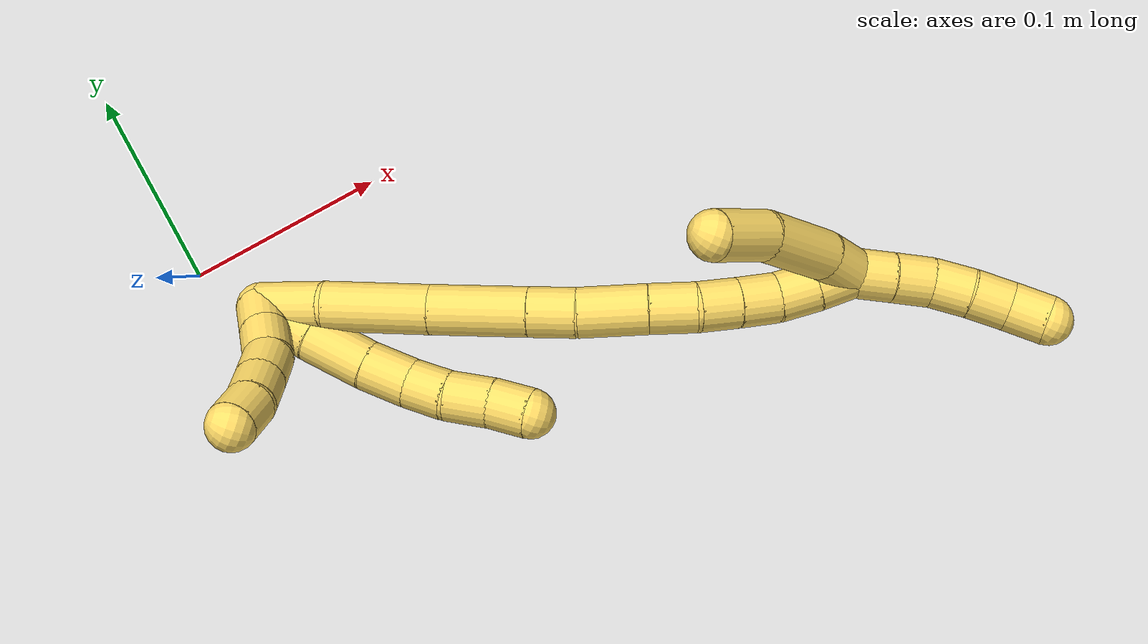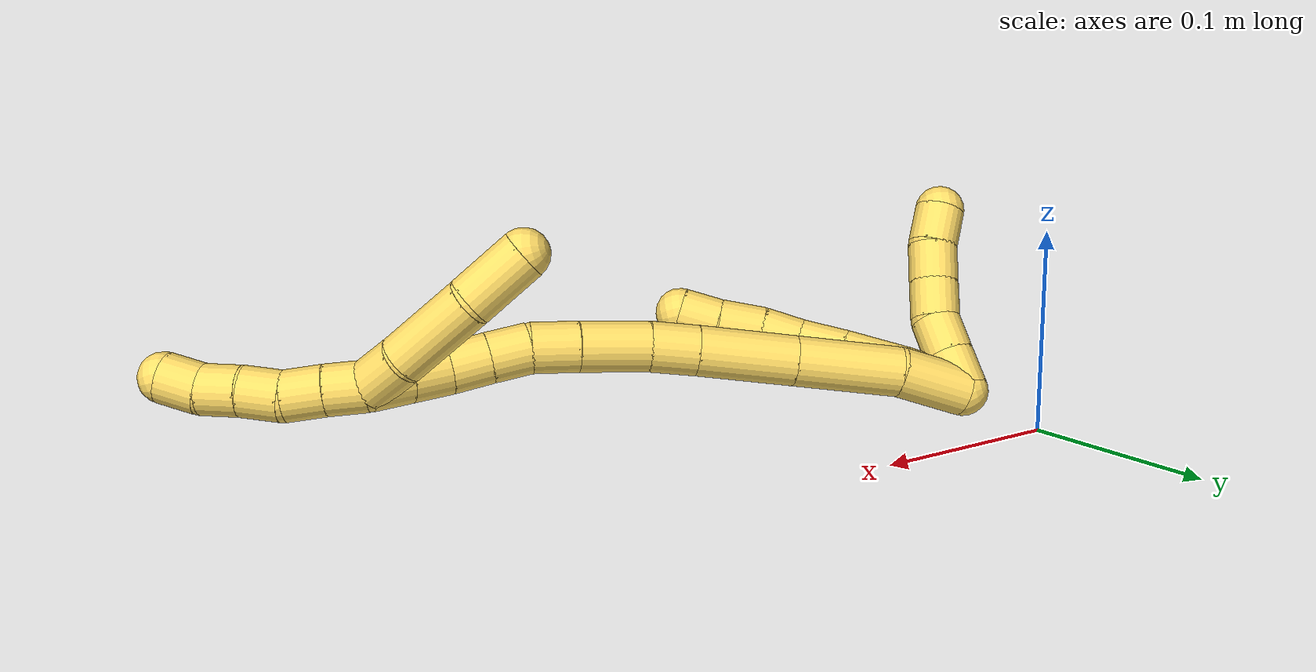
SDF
<sdf version="1.7">
 <world name="default">
  <model name="5">
   <static>0</static>
   <link name="5">
    <collision name="collision-cylinder-e_1_2_8">
     <pose>-0.007838 0.003042 0.01331 -0.22471 -0.521159 0.060152</pose>
     <geometry><cylinder><radius>0.0125</radius><length>0.031486</length></cylinder></geometry>
     <surface>
      <friction><ode><mu>1.16</mu><mu2>1.16</mu2><slip1>0</slip1><slip2>0</slip2></ode></friction>
      <contact><ode><kp>1e+06</kp><kd>1</kd><max_vel>0</max_vel><min_depth>0.001</min_depth></ode></contact>
     </surface>
    </collision>
    <visual name="visual-cylinder-e_1_2_8">
     <pose>-0.007838 0.003042 0.01331 -0.22471 -0.521159 0.060152</pose>
     <geometry><cylinder><radius>0.0125</radius><length>0.031486</length></cylinder></geometry>
     <material><ambient>1 0.858824 0.4 1</ambient></material>
    </visual>
    <collision name="collision-cylinder-e_2_8_9">
     <pose>-0.02277 0.009456 0.040517 -0.237965 -0.460438 0.056023</pose>
     <geometry><cylinder><radius>0.0125</radius><length>0.031927</length></cylinder></geometry>
     <surface>
      <friction><ode><mu>1.16</mu><mu2>1.16</mu2><slip1>0</slip1><slip2>0</slip2></ode></friction>
      <contact><ode><kp>1e+06</kp><kd>1</kd><max_vel>0</max_vel><min_depth>0.001</min_depth></ode></contact>
     </surface>
    </collision>
    <visual name="visual-cylinder-e_2_8_9">
     <pose>-0.02277 0.009456 0.040517 -0.237965 -0.460438 0.056023</pose>
     <geometry><cylinder><radius>0.0125</radius><length>0.031927</length></cylinder></geometry>
     <material><ambient>1 0.858824 0.4 1</ambient></material>
    </visual>
    <collision name="collision-cylinder-e_3_9_10">
     <pose>-0.034497 0.016032 0.064943 -0.295601 -0.398542 0.060117</pose>
     <geometry><cylinder><radius>0.0125</radius><length>0.02388</length></cylinder></geometry>
     <surface>
      <friction><ode><mu>1.16</mu><mu2>1.16</mu2><slip1>0</slip1><slip2>0</slip2></ode></friction>
      <contact><ode><kp>1e+06</kp><kd>1</kd><max_vel>0</max_vel><min_depth>0.001</min_depth></ode></contact>
     </surface>
    </collision>
    <visual name="visual-cylinder-e_3_9_10">
     <pose>-0.034497 0.016032 0.064943 -0.295601 -0.398542 0.060117</pose>
     <geometry><cylinder><radius>0.0125</radius><length>0.02388</length></cylinder></geometry>
     <material><ambient>1 0.858824 0.4 1</ambient></material>
    </visual>
    <collision name="collision-cylinder-e_4_10_11">
     <pose>-0.043186 0.023039 0.083791 -0.42847 -0.417306 0.092071</pose>
     <geometry><cylinder><radius>0.0125</radius><length>0.020014</length></cylinder></geometry>
     <surface>
      <friction><ode><mu>1.16</mu><mu2>1.16</mu2><slip1>0</slip1><slip2>0</slip2></ode></friction>
      <contact><ode><kp>1e+06</kp><kd>1</kd><max_vel>0</max_vel><min_depth>0.001</min_depth></ode></contact>
     </surface>
    </collision>
    <visual name="visual-cylinder-e_4_10_11">
     <pose>-0.043186 0.023039 0.083791 -0.42847 -0.417306 0.092071</pose>
     <geometry><cylinder><radius>0.0125</radius><length>0.020014</length></cylinder></geometry>
     <material><ambient>1 0.858824 0.4 1</ambient></material>
    </visual>
    <collision name="collision-cylinder-e_5_11_12">
     <pose>-0.049996 0.031761 0.101951 -0.463726 -0.245298 0.058193</pose>
     <geometry><cylinder><radius>0.0125</radius><length>0.022681</length></cylinder></geometry>
     <surface>
      <friction><ode><mu>1.16</mu><mu2>1.16</mu2><slip1>0</slip1><slip2>0</slip2></ode></friction>
      <contact><ode><kp>1e+06</kp><kd>1</kd><max_vel>0</max_vel><min_depth>0.001</min_depth></ode></contact>
     </surface>
    </collision>
    <visual name="visual-cylinder-e_5_11_12">
     <pose>-0.049996 0.031761 0.101951 -0.463726 -0.245298 0.058193</pose>
     <geometry><cylinder><radius>0.0125</radius><length>0.022681</length></cylinder></geometry>
     <material><ambient>1 0.858824 0.4 1</ambient></material>
    </visual>
    <collision name="collision-cylinder-e_6_12_6">
     <pose>-0.056369 0.040806 0.120158 -0.458044 -0.370066 0.08721</pose>
     <geometry><cylinder><radius>0.0125</radius><length>0.020012</length></cylinder></geometry>
     <surface>
      <friction><ode><mu>1.16</mu><mu2>1.16</mu2><slip1>0</slip1><slip2>0</slip2></ode></friction>
      <contact><ode><kp>1e+06</kp><kd>1</kd><max_vel>0</max_vel><min_depth>0.001</min_depth></ode></contact>
     </surface>
    </collision>
    <visual name="visual-cylinder-e_6_12_6">
     <pose>-0.056369 0.040806 0.120158 -0.458044 -0.370066 0.08721</pose>
     <geometry><cylinder><radius>0.0125</radius><length>0.020012</length></cylinder></geometry>
     <material><ambient>1 0.858824 0.4 1</ambient></material>
    </visual>
    <collision name="collision-cylinder-e_1_2_13">
     <pose>-0.009761 0.001484 0.001589 -0.751222 -1.35168 0.612464</pose>
     <geometry><cylinder><radius>0.0125</radius><length>0.02</length></cylinder></geometry>
     <surface>
      <friction><ode><mu>1.16</mu><mu2>1.16</mu2><slip1>0</slip1><slip2>0</slip2></ode></friction>
      <contact><ode><kp>1e+06</kp><kd>1</kd><max_vel>0</max_vel><min_depth>0.001</min_depth></ode></contact>
     </surface>
    </collision>
    <visual name="visual-cylinder-e_1_2_13">
     <pose>-0.009761 0.001484 0.001589 -0.751222 -1.35168 0.612464</pose>
     <geometry><cylinder><radius>0.0125</radius><length>0.02</length></cylinder></geometry>
     <material><ambient>1 0.858824 0.4 1</ambient></material>
    </visual>
    <collision name="collision-cylinder-e_2_13_14">
     <pose>-0.029288 0.00453 0.004653 -0.814249 -1.35415 0.667334</pose>
     <geometry><cylinder><radius>0.0125</radius><length>0.02</length></cylinder></geometry>
     <surface>
      <friction><ode><mu>1.16</mu><mu2>1.16</mu2><slip1>0</slip1><slip2>0</slip2></ode></friction>
      <contact><ode><kp>1e+06</kp><kd>1</kd><max_vel>0</max_vel><min_depth>0.001</min_depth></ode></contact>
     </surface>
    </collision>
    <visual name="visual-cylinder-e_2_13_14">
     <pose>-0.029288 0.00453 0.004653 -0.814249 -1.35415 0.667334</pose>
     <geometry><cylinder><radius>0.0125</radius><length>0.02</length></cylinder></geometry>
     <material><ambient>1 0.858824 0.4 1</ambient></material>
    </visual>
    <collision name="collision-cylinder-e_3_14_15">
     <pose>-0.048837 0.007437 0.004548 -2.4368 -1.36185 2.28941</pose>
     <geometry><cylinder><radius>0.0125</radius><length>0.02</length></cylinder></geometry>
     <surface>
      <friction><ode><mu>1.16</mu><mu2>1.16</mu2><slip1>0</slip1><slip2>0</slip2></ode></friction>
      <contact><ode><kp>1e+06</kp><kd>1</kd><max_vel>0</max_vel><min_depth>0.001</min_depth></ode></contact>
     </surface>
    </collision>
    <visual name="visual-cylinder-e_3_14_15">
     <pose>-0.048837 0.007437 0.004548 -2.4368 -1.36185 2.28941</pose>
     <geometry><cylinder><radius>0.0125</radius><length>0.02</length></cylinder></geometry>
     <material><ambient>1 0.858824 0.4 1</ambient></material>
    </visual>
    <collision name="collision-cylinder-e_4_15_16">
     <pose>-0.068311 0.010514 0.001218 -2.36107 -1.32199 2.16852</pose>
     <geometry><cylinder><radius>0.0125</radius><length>0.02</length></cylinder></geometry>
     <surface>
      <friction><ode><mu>1.16</mu><mu2>1.16</mu2><slip1>0</slip1><slip2>0</slip2></ode></friction>
      <contact><ode><kp>1e+06</kp><kd>1</kd><max_vel>0</max_vel><min_depth>0.001</min_depth></ode></contact>
     </surface>
    </collision>
    <visual name="visual-cylinder-e_4_15_16">
     <pose>-0.068311 0.010514 0.001218 -2.36107 -1.32199 2.16852</pose>
     <geometry><cylinder><radius>0.0125</radius><length>0.02</length></cylinder></geometry>
     <material><ambient>1 0.858824 0.4 1</ambient></material>
    </visual>
    <collision name="collision-cylinder-e_5_16_5">
     <pose>-0.087259 0.013002 -0.004241 -2.94077 -1.18252 2.84369</pose>
     <geometry><cylinder><radius>0.0125</radius><length>0.02</length></cylinder></geometry>
     <surface>
      <friction><ode><mu>1.16</mu><mu2>1.16</mu2><slip1>0</slip1><slip2>0</slip2></ode></friction>
      <contact><ode><kp>1e+06</kp><kd>1</kd><max_vel>0</max_vel><min_depth>0.001</min_depth></ode></contact>
     </surface>
    </collision>
    <visual name="visual-cylinder-e_5_16_5">
     <pose>-0.087259 0.013002 -0.004241 -2.94077 -1.18252 2.84369</pose>
     <geometry><cylinder><radius>0.0125</radius><length>0.02</length></cylinder></geometry>
     <material><ambient>1 0.858824 0.4 1</ambient></material>
    </visual>
    <collision name="collision-cylinder-e_1_2_17">
     <pose>-0.004148 0.010874 0.013218 -0.688395 -0.23778 0.085588</pose>
     <geometry><cylinder><radius>0.0125</radius><length>0.035224</length></cylinder></geometry>
     <surface>
      <friction><ode><mu>1.16</mu><mu2>1.16</mu2><slip1>0</slip1><slip2>0</slip2></ode></friction>
      <contact><ode><kp>1e+06</kp><kd>1</kd><max_vel>0</max_vel><min_depth>0.001</min_depth></ode></contact>
     </surface>
    </collision>
    <visual name="visual-cylinder-e_1_2_17">
     <pose>-0.004148 0.010874 0.013218 -0.688395 -0.23778 0.085588</pose>
     <geometry><cylinder><radius>0.0125</radius><length>0.035224</length></cylinder></geometry>
     <material><ambient>1 0.858824 0.4 1</ambient></material>
    </visual>
    <collision name="collision-cylinder-e_2_17_18">
     <pose>-0.011775 0.034921 0.049378 -0.52123 -0.130732 0.03491</pose>
     <geometry><cylinder><radius>0.0125</radius><length>0.053364</length></cylinder></geometry>
     <surface>
      <friction><ode><mu>1.16</mu><mu2>1.16</mu2><slip1>0</slip1><slip2>0</slip2></ode></friction>
      <contact><ode><kp>1e+06</kp><kd>1</kd><max_vel>0</max_vel><min_depth>0.001</min_depth></ode></contact>
     </surface>
    </collision>
    <visual name="visual-cylinder-e_2_17_18">
     <pose>-0.011775 0.034921 0.049378 -0.52123 -0.130732 0.03491</pose>
     <geometry><cylinder><radius>0.0125</radius><length>0.053364</length></cylinder></geometry>
     <material><ambient>1 0.858824 0.4 1</ambient></material>
    </visual>
    <collision name="collision-cylinder-e_3_18_19">
     <pose>-0.018325 0.060344 0.093276 -0.528988 -0.125877 0.034134</pose>
     <geometry><cylinder><radius>0.0125</radius><length>0.048936</length></cylinder></geometry>
     <surface>
      <friction><ode><mu>1.16</mu><mu2>1.16</mu2><slip1>0</slip1><slip2>0</slip2></ode></friction>
      <contact><ode><kp>1e+06</kp><kd>1</kd><max_vel>0</max_vel><min_depth>0.001</min_depth></ode></contact>
     </surface>
    </collision>
    <visual name="visual-cylinder-e_3_18_19">
     <pose>-0.018325 0.060344 0.093276 -0.528988 -0.125877 0.034134</pose>
     <geometry><cylinder><radius>0.0125</radius><length>0.048936</length></cylinder></geometry>
     <material><ambient>1 0.858824 0.4 1</ambient></material>
    </visual>
    <collision name="collision-cylinder-e_4_19_20">
     <pose>-0.022685 0.078458 0.124463 -0.520439 -0.108796 0.028994</pose>
     <geometry><cylinder><radius>0.0125</radius><length>0.023723</length></cylinder></geometry>
     <surface>
      <friction><ode><mu>1.16</mu><mu2>1.16</mu2><slip1>0</slip1><slip2>0</slip2></ode></friction>
      <contact><ode><kp>1e+06</kp><kd>1</kd><max_vel>0</max_vel><min_depth>0.001</min_depth></ode></contact>
     </surface>
    </collision>
    <visual name="visual-cylinder-e_4_19_20">
     <pose>-0.022685 0.078458 0.124463 -0.520439 -0.108796 0.028994</pose>
     <geometry><cylinder><radius>0.0125</radius><length>0.023723</length></cylinder></geometry>
     <material><ambient>1 0.858824 0.4 1</ambient></material>
    </visual>
    <collision name="collision-cylinder-e_5_20_21">
     <pose>-0.024123 0.093019 0.149735 -0.524297 -0.008649 0.002321</pose>
     <geometry><cylinder><radius>0.0125</radius><length>0.034752</length></cylinder></geometry>
     <surface>
      <friction><ode><mu>1.16</mu><mu2>1.16</mu2><slip1>0</slip1><slip2>0</slip2></ode></friction>
      <contact><ode><kp>1e+06</kp><kd>1</kd><max_vel>0</max_vel><min_depth>0.001</min_depth></ode></contact>
     </surface>
    </collision>
    <visual name="visual-cylinder-e_5_20_21">
     <pose>-0.024123 0.093019 0.149735 -0.524297 -0.008649 0.002321</pose>
     <geometry><cylinder><radius>0.0125</radius><length>0.034752</length></cylinder></geometry>
     <material><ambient>1 0.858824 0.4 1</ambient></material>
    </visual>
    <collision name="collision-cylinder-e_6_21_22">
     <pose>-0.024227 0.107283 0.175238 -0.488923 0.003932 -0.000981</pose>
     <geometry><cylinder><radius>0.0125</radius><length>0.023701</length></cylinder></geometry>
     <surface>
      <friction><ode><mu>1.16</mu><mu2>1.16</mu2><slip1>0</slip1><slip2>0</slip2></ode></friction>
      <contact><ode><kp>1e+06</kp><kd>1</kd><max_vel>0</max_vel><min_depth>0.001</min_depth></ode></contact>
     </surface>
    </collision>
    <visual name="visual-cylinder-e_6_21_22">
     <pose>-0.024227 0.107283 0.175238 -0.488923 0.003932 -0.000981</pose>
     <geometry><cylinder><radius>0.0125</radius><length>0.023701</length></cylinder></geometry>
     <material><ambient>1 0.858824 0.4 1</ambient></material>
    </visual>
    <collision name="collision-cylinder-e_7_22_23">
     <pose>-0.022236 0.116762 0.194815 -0.405535 0.193579 -0.039918</pose>
     <geometry><cylinder><radius>0.0125</radius><length>0.020217</length></cylinder></geometry>
     <surface>
      <friction><ode><mu>1.16</mu><mu2>1.16</mu2><slip1>0</slip1><slip2>0</slip2></ode></friction>
      <contact><ode><kp>1e+06</kp><kd>1</kd><max_vel>0</max_vel><min_depth>0.001</min_depth></ode></contact>
     </surface>
    </collision>
    <visual name="visual-cylinder-e_7_22_23">
     <pose>-0.022236 0.116762 0.194815 -0.405535 0.193579 -0.039918</pose>
     <geometry><cylinder><radius>0.0125</radius><length>0.020217</length></cylinder></geometry>
     <material><ambient>1 0.858824 0.4 1</ambient></material>
    </visual>
    <collision name="collision-cylinder-e_8_23_24">
     <pose>-0.018083 0.124583 0.212898 -0.410926 0.222005 -0.046449</pose>
     <geometry><cylinder><radius>0.0125</radius><length>0.020057</length></cylinder></geometry>
     <surface>
      <friction><ode><mu>1.16</mu><mu2>1.16</mu2><slip1>0</slip1><slip2>0</slip2></ode></friction>
      <contact><ode><kp>1e+06</kp><kd>1</kd><max_vel>0</max_vel><min_depth>0.001</min_depth></ode></contact>
     </surface>
    </collision>
    <visual name="visual-cylinder-e_8_23_24">
     <pose>-0.018083 0.124583 0.212898 -0.410926 0.222005 -0.046449</pose>
     <geometry><cylinder><radius>0.0125</radius><length>0.020057</length></cylinder></geometry>
     <material><ambient>1 0.858824 0.4 1</ambient></material>
    </visual>
    <collision name="collision-cylinder-e_9_24_25">
     <pose>-0.013361 0.13387 0.229923 -0.588682 0.253924 -0.077354</pose>
     <geometry><cylinder><radius>0.0125</radius><length>0.020017</length></cylinder></geometry>
     <surface>
      <friction><ode><mu>1.16</mu><mu2>1.16</mu2><slip1>0</slip1><slip2>0</slip2></ode></friction>
      <contact><ode><kp>1e+06</kp><kd>1</kd><max_vel>0</max_vel><min_depth>0.001</min_depth></ode></contact>
     </surface>
    </collision>
    <visual name="visual-cylinder-e_9_24_25">
     <pose>-0.013361 0.13387 0.229923 -0.588682 0.253924 -0.077354</pose>
     <geometry><cylinder><radius>0.0125</radius><length>0.020017</length></cylinder></geometry>
     <material><ambient>1 0.858824 0.4 1</ambient></material>
    </visual>
    <collision name="collision-cylinder-e_10_25_1">
     <pose>-0.008061 0.145115 0.245591 -0.656615 0.282164 -0.096682</pose>
     <geometry><cylinder><radius>0.0125</radius><length>0.020009</length></cylinder></geometry>
     <surface>
      <friction><ode><mu>1.16</mu><mu2>1.16</mu2><slip1>0</slip1><slip2>0</slip2></ode></friction>
      <contact><ode><kp>1e+06</kp><kd>1</kd><max_vel>0</max_vel><min_depth>0.001</min_depth></ode></contact>
     </surface>
    </collision>
    <visual name="visual-cylinder-e_10_25_1">
     <pose>-0.008061 0.145115 0.245591 -0.656615 0.282164 -0.096682</pose>
     <geometry><cylinder><radius>0.0125</radius><length>0.020009</length></cylinder></geometry>
     <material><ambient>1 0.858824 0.4 1</ambient></material>
    </visual>
    <collision name="collision-cylinder-e_1_1_26">
     <pose>-0.007686 0.15465 0.242429 -2.8133 -0.208758 1.12791</pose>
     <geometry><cylinder><radius>0.0125</radius><length>0.023266</length></cylinder></geometry>
     <surface>
      <friction><ode><mu>1.16</mu><mu2>1.16</mu2><slip1>0</slip1><slip2>0</slip2></ode></friction>
      <contact><ode><kp>1e+06</kp><kd>1</kd><max_vel>0</max_vel><min_depth>0.001</min_depth></ode></contact>
     </surface>
    </collision>
    <visual name="visual-cylinder-e_1_1_26">
     <pose>-0.007686 0.15465 0.242429 -2.8133 -0.208758 1.12791</pose>
     <geometry><cylinder><radius>0.0125</radius><length>0.023266</length></cylinder></geometry>
     <material><ambient>1 0.858824 0.4 1</ambient></material>
    </visual>
    <collision name="collision-cylinder-e_2_26_27">
     <pose>-0.017484 0.162933 0.211743 -2.91396 -0.346775 1.9851</pose>
     <geometry><cylinder><radius>0.0125</radius><length>0.043469</length></cylinder></geometry>
     <surface>
      <friction><ode><mu>1.16</mu><mu2>1.16</mu2><slip1>0</slip1><slip2>0</slip2></ode></friction>
      <contact><ode><kp>1e+06</kp><kd>1</kd><max_vel>0</max_vel><min_depth>0.001</min_depth></ode></contact>
     </surface>
    </collision>
    <visual name="visual-cylinder-e_2_26_27">
     <pose>-0.017484 0.162933 0.211743 -2.91396 -0.346775 1.9851</pose>
     <geometry><cylinder><radius>0.0125</radius><length>0.043469</length></cylinder></geometry>
     <material><ambient>1 0.858824 0.4 1</ambient></material>
    </visual>
    <collision name="collision-cylinder-e_3_27_4">
     <pose>-0.032886 0.168289 0.177275 -3.09057 -0.502858 2.94358</pose>
     <geometry><cylinder><radius>0.0125</radius><length>0.033265</length></cylinder></geometry>
     <surface>
      <friction><ode><mu>1.16</mu><mu2>1.16</mu2><slip1>0</slip1><slip2>0</slip2></ode></friction>
      <contact><ode><kp>1e+06</kp><kd>1</kd><max_vel>0</max_vel><min_depth>0.001</min_depth></ode></contact>
     </surface>
    </collision>
    <visual name="visual-cylinder-e_3_27_4">
     <pose>-0.032886 0.168289 0.177275 -3.09057 -0.502858 2.94358</pose>
     <geometry><cylinder><radius>0.0125</radius><length>0.033265</length></cylinder></geometry>
     <material><ambient>1 0.858824 0.4 1</ambient></material>
    </visual>
    <collision name="collision-cylinder-e_1_1_28">
     <pose>-0.005435 0.153948 0.26275 -0.301256 -0.016035 0.002434</pose>
     <geometry><cylinder><radius>0.0125</radius><length>0.02</length></cylinder></geometry>
     <surface>
      <friction><ode><mu>1.16</mu><mu2>1.16</mu2><slip1>0</slip1><slip2>0</slip2></ode></friction>
      <contact><ode><kp>1e+06</kp><kd>1</kd><max_vel>0</max_vel><min_depth>0.001</min_depth></ode></contact>
     </surface>
    </collision>
    <visual name="visual-cylinder-e_1_1_28">
     <pose>-0.005435 0.153948 0.26275 -0.301256 -0.016035 0.002434</pose>
     <geometry><cylinder><radius>0.0125</radius><length>0.02</length></cylinder></geometry>
     <material><ambient>1 0.858824 0.4 1</ambient></material>
    </visual>
    <collision name="collision-cylinder-e_2_28_29">
     <pose>-0.00545 0.159536 0.281948 -0.26525 0.014608 -0.001949</pose>
     <geometry><cylinder><radius>0.0125</radius><length>0.02</length></cylinder></geometry>
     <surface>
      <friction><ode><mu>1.16</mu><mu2>1.16</mu2><slip1>0</slip1><slip2>0</slip2></ode></friction>
      <contact><ode><kp>1e+06</kp><kd>1</kd><max_vel>0</max_vel><min_depth>0.001</min_depth></ode></contact>
     </surface>
    </collision>
    <visual name="visual-cylinder-e_2_28_29">
     <pose>-0.00545 0.159536 0.281948 -0.26525 0.014608 -0.001949</pose>
     <geometry><cylinder><radius>0.0125</radius><length>0.02</length></cylinder></geometry>
     <material><ambient>1 0.858824 0.4 1</ambient></material>
    </visual>
    <collision name="collision-cylinder-e_3_29_30">
     <pose>-0.007875 0.165094 0.300804 -0.30875 -0.260009 0.040685</pose>
     <geometry><cylinder><radius>0.0125</radius><length>0.02</length></cylinder></geometry>
     <surface>
      <friction><ode><mu>1.16</mu><mu2>1.16</mu2><slip1>0</slip1><slip2>0</slip2></ode></friction>
      <contact><ode><kp>1e+06</kp><kd>1</kd><max_vel>0</max_vel><min_depth>0.001</min_depth></ode></contact>
     </surface>
    </collision>
    <visual name="visual-cylinder-e_3_29_30">
     <pose>-0.007875 0.165094 0.300804 -0.30875 -0.260009 0.040685</pose>
     <geometry><cylinder><radius>0.0125</radius><length>0.02</length></cylinder></geometry>
     <material><ambient>1 0.858824 0.4 1</ambient></material>
    </visual>
    <collision name="collision-cylinder-e_4_30_31">
     <pose>-0.012623 0.169998 0.31957 -0.203017 -0.219544 0.022452</pose>
     <geometry><cylinder><radius>0.0125</radius><length>0.02</length></cylinder></geometry>
     <surface>
      <friction><ode><mu>1.16</mu><mu2>1.16</mu2><slip1>0</slip1><slip2>0</slip2></ode></friction>
      <contact><ode><kp>1e+06</kp><kd>1</kd><max_vel>0</max_vel><min_depth>0.001</min_depth></ode></contact>
     </surface>
    </collision>
    <visual name="visual-cylinder-e_4_30_31">
     <pose>-0.012623 0.169998 0.31957 -0.203017 -0.219544 0.022452</pose>
     <geometry><cylinder><radius>0.0125</radius><length>0.02</length></cylinder></geometry>
     <material><ambient>1 0.858824 0.4 1</ambient></material>
    </visual>
    <collision name="collision-cylinder-e_5_31_3">
     <pose>-0.018906 0.175042 0.337714 -0.344045 -0.422952 0.074564</pose>
     <geometry><cylinder><radius>0.0125</radius><length>0.02</length></cylinder></geometry>
     <surface>
      <friction><ode><mu>1.16</mu><mu2>1.16</mu2><slip1>0</slip1><slip2>0</slip2></ode></friction>
      <contact><ode><kp>1e+06</kp><kd>1</kd><max_vel>0</max_vel><min_depth>0.001</min_depth></ode></contact>
     </surface>
    </collision>
    <visual name="visual-cylinder-e_5_31_3">
     <pose>-0.018906 0.175042 0.337714 -0.344045 -0.422952 0.074564</pose>
     <geometry><cylinder><radius>0.0125</radius><length>0.02</length></cylinder></geometry>
     <material><ambient>1 0.858824 0.4 1</ambient></material>
    </visual>
    <collision name="collision-sphere-3">
     <pose>-0.02301 0.178117 0.346299 0 -0 0</pose>
     <geometry><sphere><radius>0.0125</radius></sphere></geometry>
     <surface>
      <friction><ode><mu>1.16</mu><mu2>1.16</mu2><slip1>0</slip1><slip2>0</slip2></ode></friction>
      <contact><ode><kp>1e+06</kp><kd>1</kd><max_vel>0</max_vel><min_depth>0.001</min_depth></ode></contact>
     </surface>
    </collision>
    <visual name="visual-sphere-3">
     <pose>-0.02301 0.178117 0.346299 0 -0 0</pose>
     <geometry><sphere><radius>0.0125</radius></sphere></geometry>
     <material><ambient>1 0.858824 0.4 1</ambient></material>
    </visual>
    <collision name="collision-sphere-31">
     <pose>-0.014801 0.171966 0.32913 0 -0 0</pose>
     <geometry><sphere><radius>0.0125</radius></sphere></geometry>
     <surface>
      <friction><ode><mu>1.16</mu><mu2>1.16</mu2><slip1>0</slip1><slip2>0</slip2></ode></friction>
      <contact><ode><kp>1e+06</kp><kd>1</kd><max_vel>0</max_vel><min_depth>0.001</min_depth></ode></contact>
     </surface>
    </collision>
    <visual name="visual-sphere-31">
     <pose>-0.014801 0.171966 0.32913 0 -0 0</pose>
     <geometry><sphere><radius>0.0125</radius></sphere></geometry>
     <material><ambient>1 0.858824 0.4 1</ambient></material>
    </visual>
    <collision name="collision-sphere-30">
     <pose>-0.010445 0.16803 0.310011 0 -0 0</pose>
     <geometry><sphere><radius>0.0125</radius></sphere></geometry>
     <surface>
      <friction><ode><mu>1.16</mu><mu2>1.16</mu2><slip1>0</slip1><slip2>0</slip2></ode></friction>
      <contact><ode><kp>1e+06</kp><kd>1</kd><max_vel>0</max_vel><min_depth>0.001</min_depth></ode></contact>
     </surface>
    </collision>
    <visual name="visual-sphere-30">
     <pose>-0.010445 0.16803 0.310011 0 -0 0</pose>
     <geometry><sphere><radius>0.0125</radius></sphere></geometry>
     <material><ambient>1 0.858824 0.4 1</ambient></material>
    </visual>
    <collision name="collision-sphere-29">
     <pose>-0.005304 0.162157 0.291597 0 -0 0</pose>
     <geometry><sphere><radius>0.0125</radius></sphere></geometry>
     <surface>
      <friction><ode><mu>1.16</mu><mu2>1.16</mu2><slip1>0</slip1><slip2>0</slip2></ode></friction>
      <contact><ode><kp>1e+06</kp><kd>1</kd><max_vel>0</max_vel><min_depth>0.001</min_depth></ode></contact>
     </surface>
    </collision>
    <visual name="visual-sphere-29">
     <pose>-0.005304 0.162157 0.291597 0 -0 0</pose>
     <geometry><sphere><radius>0.0125</radius></sphere></geometry>
     <material><ambient>1 0.858824 0.4 1</ambient></material>
    </visual>
    <collision name="collision-sphere-28">
     <pose>-0.005596 0.156915 0.272299 0 -0 0</pose>
     <geometry><sphere><radius>0.0125</radius></sphere></geometry>
     <surface>
      <friction><ode><mu>1.16</mu><mu2>1.16</mu2><slip1>0</slip1><slip2>0</slip2></ode></friction>
      <contact><ode><kp>1e+06</kp><kd>1</kd><max_vel>0</max_vel><min_depth>0.001</min_depth></ode></contact>
     </surface>
    </collision>
    <visual name="visual-sphere-28">
     <pose>-0.005596 0.156915 0.272299 0 -0 0</pose>
     <geometry><sphere><radius>0.0125</radius></sphere></geometry>
     <material><ambient>1 0.858824 0.4 1</ambient></material>
    </visual>
    <collision name="collision-sphere-4">
     <pose>-0.040902 0.169032 0.16272 0 -0 0</pose>
     <geometry><sphere><radius>0.0125</radius></sphere></geometry>
     <surface>
      <friction><ode><mu>1.16</mu><mu2>1.16</mu2><slip1>0</slip1><slip2>0</slip2></ode></friction>
      <contact><ode><kp>1e+06</kp><kd>1</kd><max_vel>0</max_vel><min_depth>0.001</min_depth></ode></contact>
     </surface>
    </collision>
    <visual name="visual-sphere-4">
     <pose>-0.040902 0.169032 0.16272 0 -0 0</pose>
     <geometry><sphere><radius>0.0125</radius></sphere></geometry>
     <material><ambient>1 0.858824 0.4 1</ambient></material>
    </visual>
    <collision name="collision-sphere-27">
     <pose>-0.02487 0.167546 0.19183 0 -0 0</pose>
     <geometry><sphere><radius>0.0125</radius></sphere></geometry>
     <surface>
      <friction><ode><mu>1.16</mu><mu2>1.16</mu2><slip1>0</slip1><slip2>0</slip2></ode></friction>
      <contact><ode><kp>1e+06</kp><kd>1</kd><max_vel>0</max_vel><min_depth>0.001</min_depth></ode></contact>
     </surface>
    </collision>
    <visual name="visual-sphere-27">
     <pose>-0.02487 0.167546 0.19183 0 -0 0</pose>
     <geometry><sphere><radius>0.0125</radius></sphere></geometry>
     <material><ambient>1 0.858824 0.4 1</ambient></material>
    </visual>
    <collision name="collision-sphere-26">
     <pose>-0.010097 0.15832 0.231656 0 -0 0</pose>
     <geometry><sphere><radius>0.0125</radius></sphere></geometry>
     <surface>
      <friction><ode><mu>1.16</mu><mu2>1.16</mu2><slip1>0</slip1><slip2>0</slip2></ode></friction>
      <contact><ode><kp>1e+06</kp><kd>1</kd><max_vel>0</max_vel><min_depth>0.001</min_depth></ode></contact>
     </surface>
    </collision>
    <visual name="visual-sphere-26">
     <pose>-0.010097 0.15832 0.231656 0 -0 0</pose>
     <geometry><sphere><radius>0.0125</radius></sphere></geometry>
     <material><ambient>1 0.858824 0.4 1</ambient></material>
    </visual>
    <collision name="collision-sphere-1">
     <pose>-0.005275 0.150981 0.253202 0 -0 0</pose>
     <geometry><sphere><radius>0.0125</radius></sphere></geometry>
     <surface>
      <friction><ode><mu>1.16</mu><mu2>1.16</mu2><slip1>0</slip1><slip2>0</slip2></ode></friction>
      <contact><ode><kp>1e+06</kp><kd>1</kd><max_vel>0</max_vel><min_depth>0.001</min_depth></ode></contact>
     </surface>
    </collision>
    <visual name="visual-sphere-1">
     <pose>-0.005275 0.150981 0.253202 0 -0 0</pose>
     <geometry><sphere><radius>0.0125</radius></sphere></geometry>
     <material><ambient>1 0.858824 0.4 1</ambient></material>
    </visual>
    <collision name="collision-sphere-25">
     <pose>-0.010846 0.13925 0.23798 0 -0 0</pose>
     <geometry><sphere><radius>0.0125</radius></sphere></geometry>
     <surface>
      <friction><ode><mu>1.16</mu><mu2>1.16</mu2><slip1>0</slip1><slip2>0</slip2></ode></friction>
      <contact><ode><kp>1e+06</kp><kd>1</kd><max_vel>0</max_vel><min_depth>0.001</min_depth></ode></contact>
     </surface>
    </collision>
    <visual name="visual-sphere-25">
     <pose>-0.010846 0.13925 0.23798 0 -0 0</pose>
     <geometry><sphere><radius>0.0125</radius></sphere></geometry>
     <material><ambient>1 0.858824 0.4 1</ambient></material>
    </visual>
    <collision name="collision-sphere-24">
     <pose>-0.015875 0.128491 0.221866 0 -0 0</pose>
     <geometry><sphere><radius>0.0125</radius></sphere></geometry>
     <surface>
      <friction><ode><mu>1.16</mu><mu2>1.16</mu2><slip1>0</slip1><slip2>0</slip2></ode></friction>
      <contact><ode><kp>1e+06</kp><kd>1</kd><max_vel>0</max_vel><min_depth>0.001</min_depth></ode></contact>
     </surface>
    </collision>
    <visual name="visual-sphere-24">
     <pose>-0.015875 0.128491 0.221866 0 -0 0</pose>
     <geometry><sphere><radius>0.0125</radius></sphere></geometry>
     <material><ambient>1 0.858824 0.4 1</ambient></material>
    </visual>
    <collision name="collision-sphere-23">
     <pose>-0.020291 0.120676 0.20393 0 -0 0</pose>
     <geometry><sphere><radius>0.0125</radius></sphere></geometry>
     <surface>
      <friction><ode><mu>1.16</mu><mu2>1.16</mu2><slip1>0</slip1><slip2>0</slip2></ode></friction>
      <contact><ode><kp>1e+06</kp><kd>1</kd><max_vel>0</max_vel><min_depth>0.001</min_depth></ode></contact>
     </surface>
    </collision>
    <visual name="visual-sphere-23">
     <pose>-0.020291 0.120676 0.20393 0 -0 0</pose>
     <geometry><sphere><radius>0.0125</radius></sphere></geometry>
     <material><ambient>1 0.858824 0.4 1</ambient></material>
    </visual>
    <collision name="collision-sphere-22">
     <pose>-0.02418 0.112849 0.1857 0 -0 0</pose>
     <geometry><sphere><radius>0.0125</radius></sphere></geometry>
     <surface>
      <friction><ode><mu>1.16</mu><mu2>1.16</mu2><slip1>0</slip1><slip2>0</slip2></ode></friction>
      <contact><ode><kp>1e+06</kp><kd>1</kd><max_vel>0</max_vel><min_depth>0.001</min_depth></ode></contact>
     </surface>
    </collision>
    <visual name="visual-sphere-22">
     <pose>-0.02418 0.112849 0.1857 0 -0 0</pose>
     <geometry><sphere><radius>0.0125</radius></sphere></geometry>
     <material><ambient>1 0.858824 0.4 1</ambient></material>
    </visual>
    <collision name="collision-sphere-21">
     <pose>-0.024273 0.101718 0.164776 0 -0 0</pose>
     <geometry><sphere><radius>0.0125</radius></sphere></geometry>
     <surface>
      <friction><ode><mu>1.16</mu><mu2>1.16</mu2><slip1>0</slip1><slip2>0</slip2></ode></friction>
      <contact><ode><kp>1e+06</kp><kd>1</kd><max_vel>0</max_vel><min_depth>0.001</min_depth></ode></contact>
     </surface>
    </collision>
    <visual name="visual-sphere-21">
     <pose>-0.024273 0.101718 0.164776 0 -0 0</pose>
     <geometry><sphere><radius>0.0125</radius></sphere></geometry>
     <material><ambient>1 0.858824 0.4 1</ambient></material>
    </visual>
    <collision name="collision-sphere-12">
     <pose>-0.05275 0.036681 0.111791 0 -0 0</pose>
     <geometry><sphere><radius>0.0125</radius></sphere></geometry>
     <surface>
      <friction><ode><mu>1.16</mu><mu2>1.16</mu2><slip1>0</slip1><slip2>0</slip2></ode></friction>
      <contact><ode><kp>1e+06</kp><kd>1</kd><max_vel>0</max_vel><min_depth>0.001</min_depth></ode></contact>
     </surface>
    </collision>
    <visual name="visual-sphere-12">
     <pose>-0.05275 0.036681 0.111791 0 -0 0</pose>
     <geometry><sphere><radius>0.0125</radius></sphere></geometry>
     <material><ambient>1 0.858824 0.4 1</ambient></material>
    </visual>
    <collision name="collision-sphere-11">
     <pose>-0.047242 0.02684 0.092112 0 -0 0</pose>
     <geometry><sphere><radius>0.0125</radius></sphere></geometry>
     <surface>
      <friction><ode><mu>1.16</mu><mu2>1.16</mu2><slip1>0</slip1><slip2>0</slip2></ode></friction>
      <contact><ode><kp>1e+06</kp><kd>1</kd><max_vel>0</max_vel><min_depth>0.001</min_depth></ode></contact>
     </surface>
    </collision>
    <visual name="visual-sphere-11">
     <pose>-0.047242 0.02684 0.092112 0 -0 0</pose>
     <geometry><sphere><radius>0.0125</radius></sphere></geometry>
     <material><ambient>1 0.858824 0.4 1</ambient></material>
    </visual>
    <collision name="collision-sphere-10">
     <pose>-0.03913 0.019238 0.075469 0 -0 0</pose>
     <geometry><sphere><radius>0.0125</radius></sphere></geometry>
     <surface>
      <friction><ode><mu>1.16</mu><mu2>1.16</mu2><slip1>0</slip1><slip2>0</slip2></ode></friction>
      <contact><ode><kp>1e+06</kp><kd>1</kd><max_vel>0</max_vel><min_depth>0.001</min_depth></ode></contact>
     </surface>
    </collision>
    <visual name="visual-sphere-10">
     <pose>-0.03913 0.019238 0.075469 0 -0 0</pose>
     <geometry><sphere><radius>0.0125</radius></sphere></geometry>
     <material><ambient>1 0.858824 0.4 1</ambient></material>
    </visual>
    <collision name="collision-sphere-9">
     <pose>-0.029863 0.012827 0.054416 0 -0 0</pose>
     <geometry><sphere><radius>0.0125</radius></sphere></geometry>
     <surface>
      <friction><ode><mu>1.16</mu><mu2>1.16</mu2><slip1>0</slip1><slip2>0</slip2></ode></friction>
      <contact><ode><kp>1e+06</kp><kd>1</kd><max_vel>0</max_vel><min_depth>0.001</min_depth></ode></contact>
     </surface>
    </collision>
    <visual name="visual-sphere-9">
     <pose>-0.029863 0.012827 0.054416 0 -0 0</pose>
     <geometry><sphere><radius>0.0125</radius></sphere></geometry>
     <material><ambient>1 0.858824 0.4 1</ambient></material>
    </visual>
    <collision name="collision-sphere-2">
     <geometry><sphere><radius>0.0125</radius></sphere></geometry>
     <surface>
      <friction><ode><mu>1.16</mu><mu2>1.16</mu2><slip1>0</slip1><slip2>0</slip2></ode></friction>
      <contact><ode><kp>1e+06</kp><kd>1</kd><max_vel>0</max_vel><min_depth>0.001</min_depth></ode></contact>
     </surface>
    </collision>
    <visual name="visual-sphere-2">
     <geometry><sphere><radius>0.0125</radius></sphere></geometry>
     <material><ambient>1 0.858824 0.4 1</ambient></material>
    </visual>
    <collision name="collision-sphere-19">
     <pose>-0.021397 0.072595 0.114233 0 -0 0</pose>
     <geometry><sphere><radius>0.0125</radius></sphere></geometry>
     <surface>
      <friction><ode><mu>1.16</mu><mu2>1.16</mu2><slip1>0</slip1><slip2>0</slip2></ode></friction>
      <contact><ode><kp>1e+06</kp><kd>1</kd><max_vel>0</max_vel><min_depth>0.001</min_depth></ode></contact>
     </surface>
    </collision>
    <visual name="visual-sphere-19">
     <pose>-0.021397 0.072595 0.114233 0 -0 0</pose>
     <geometry><sphere><radius>0.0125</radius></sphere></geometry>
     <material><ambient>1 0.858824 0.4 1</ambient></material>
    </visual>
    <collision name="collision-sphere-8">
     <pose>-0.015676 0.006084 0.026619 0 -0 0</pose>
     <geometry><sphere><radius>0.0125</radius></sphere></geometry>
     <surface>
      <friction><ode><mu>1.16</mu><mu2>1.16</mu2><slip1>0</slip1><slip2>0</slip2></ode></friction>
      <contact><ode><kp>1e+06</kp><kd>1</kd><max_vel>0</max_vel><min_depth>0.001</min_depth></ode></contact>
     </surface>
    </collision>
    <visual name="visual-sphere-8">
     <pose>-0.015676 0.006084 0.026619 0 -0 0</pose>
     <geometry><sphere><radius>0.0125</radius></sphere></geometry>
     <material><ambient>1 0.858824 0.4 1</ambient></material>
    </visual>
    <collision name="collision-sphere-6">
     <pose>-0.059988 0.044931 0.128524 0 -0 0</pose>
     <geometry><sphere><radius>0.0125</radius></sphere></geometry>
     <surface>
      <friction><ode><mu>1.16</mu><mu2>1.16</mu2><slip1>0</slip1><slip2>0</slip2></ode></friction>
      <contact><ode><kp>1e+06</kp><kd>1</kd><max_vel>0</max_vel><min_depth>0.001</min_depth></ode></contact>
     </surface>
    </collision>
    <visual name="visual-sphere-6">
     <pose>-0.059988 0.044931 0.128524 0 -0 0</pose>
     <geometry><sphere><radius>0.0125</radius></sphere></geometry>
     <material><ambient>1 0.858824 0.4 1</ambient></material>
    </visual>
    <collision name="collision-sphere-13">
     <pose>-0.019522 0.002967 0.003177 0 -0 0</pose>
     <geometry><sphere><radius>0.0125</radius></sphere></geometry>
     <surface>
      <friction><ode><mu>1.16</mu><mu2>1.16</mu2><slip1>0</slip1><slip2>0</slip2></ode></friction>
      <contact><ode><kp>1e+06</kp><kd>1</kd><max_vel>0</max_vel><min_depth>0.001</min_depth></ode></contact>
     </surface>
    </collision>
    <visual name="visual-sphere-13">
     <pose>-0.019522 0.002967 0.003177 0 -0 0</pose>
     <geometry><sphere><radius>0.0125</radius></sphere></geometry>
     <material><ambient>1 0.858824 0.4 1</ambient></material>
    </visual>
    <collision name="collision-sphere-14">
     <pose>-0.039054 0.006094 0.006128 0 -0 0</pose>
     <geometry><sphere><radius>0.0125</radius></sphere></geometry>
     <surface>
      <friction><ode><mu>1.16</mu><mu2>1.16</mu2><slip1>0</slip1><slip2>0</slip2></ode></friction>
      <contact><ode><kp>1e+06</kp><kd>1</kd><max_vel>0</max_vel><min_depth>0.001</min_depth></ode></contact>
     </surface>
    </collision>
    <visual name="visual-sphere-14">
     <pose>-0.039054 0.006094 0.006128 0 -0 0</pose>
     <geometry><sphere><radius>0.0125</radius></sphere></geometry>
     <material><ambient>1 0.858824 0.4 1</ambient></material>
    </visual>
    <collision name="collision-sphere-15">
     <pose>-0.058619 0.008781 0.002968 0 -0 0</pose>
     <geometry><sphere><radius>0.0125</radius></sphere></geometry>
     <surface>
      <friction><ode><mu>1.16</mu><mu2>1.16</mu2><slip1>0</slip1><slip2>0</slip2></ode></friction>
      <contact><ode><kp>1e+06</kp><kd>1</kd><max_vel>0</max_vel><min_depth>0.001</min_depth></ode></contact>
     </surface>
    </collision>
    <visual name="visual-sphere-15">
     <pose>-0.058619 0.008781 0.002968 0 -0 0</pose>
     <geometry><sphere><radius>0.0125</radius></sphere></geometry>
     <material><ambient>1 0.858824 0.4 1</ambient></material>
    </visual>
    <collision name="collision-sphere-16">
     <pose>-0.078003 0.012247 -0.000531 0 -0 0</pose>
     <geometry><sphere><radius>0.0125</radius></sphere></geometry>
     <surface>
      <friction><ode><mu>1.16</mu><mu2>1.16</mu2><slip1>0</slip1><slip2>0</slip2></ode></friction>
      <contact><ode><kp>1e+06</kp><kd>1</kd><max_vel>0</max_vel><min_depth>0.001</min_depth></ode></contact>
     </surface>
    </collision>
    <visual name="visual-sphere-16">
     <pose>-0.078003 0.012247 -0.000531 0 -0 0</pose>
     <geometry><sphere><radius>0.0125</radius></sphere></geometry>
     <material><ambient>1 0.858824 0.4 1</ambient></material>
    </visual>
    <collision name="collision-sphere-5">
     <pose>-0.096515 0.013757 -0.007951 0 -0 0</pose>
     <geometry><sphere><radius>0.0125</radius></sphere></geometry>
     <surface>
      <friction><ode><mu>1.16</mu><mu2>1.16</mu2><slip1>0</slip1><slip2>0</slip2></ode></friction>
      <contact><ode><kp>1e+06</kp><kd>1</kd><max_vel>0</max_vel><min_depth>0.001</min_depth></ode></contact>
     </surface>
    </collision>
    <visual name="visual-sphere-5">
     <pose>-0.096515 0.013757 -0.007951 0 -0 0</pose>
     <geometry><sphere><radius>0.0125</radius></sphere></geometry>
     <material><ambient>1 0.858824 0.4 1</ambient></material>
    </visual>
    <collision name="collision-sphere-17">
     <pose>-0.008297 0.021748 0.026437 0 -0 0</pose>
     <geometry><sphere><radius>0.0125</radius></sphere></geometry>
     <surface>
      <friction><ode><mu>1.16</mu><mu2>1.16</mu2><slip1>0</slip1><slip2>0</slip2></ode></friction>
      <contact><ode><kp>1e+06</kp><kd>1</kd><max_vel>0</max_vel><min_depth>0.001</min_depth></ode></contact>
     </surface>
    </collision>
    <visual name="visual-sphere-17">
     <pose>-0.008297 0.021748 0.026437 0 -0 0</pose>
     <geometry><sphere><radius>0.0125</radius></sphere></geometry>
     <material><ambient>1 0.858824 0.4 1</ambient></material>
    </visual>
    <collision name="collision-sphere-18">
     <pose>-0.015253 0.048094 0.07232 0 -0 0</pose>
     <geometry><sphere><radius>0.0125</radius></sphere></geometry>
     <surface>
      <friction><ode><mu>1.16</mu><mu2>1.16</mu2><slip1>0</slip1><slip2>0</slip2></ode></friction>
      <contact><ode><kp>1e+06</kp><kd>1</kd><max_vel>0</max_vel><min_depth>0.001</min_depth></ode></contact>
     </surface>
    </collision>
    <visual name="visual-sphere-18">
     <pose>-0.015253 0.048094 0.07232 0 -0 0</pose>
     <geometry><sphere><radius>0.0125</radius></sphere></geometry>
     <material><ambient>1 0.858824 0.4 1</ambient></material>
    </visual>
    <collision name="collision-sphere-20">
     <pose>-0.023973 0.084321 0.134693 0 -0 0</pose>
     <geometry><sphere><radius>0.0125</radius></sphere></geometry>
     <surface>
      <friction><ode><mu>1.16</mu><mu2>1.16</mu2><slip1>0</slip1><slip2>0</slip2></ode></friction>
      <contact><ode><kp>1e+06</kp><kd>1</kd><max_vel>0</max_vel><min_depth>0.001</min_depth></ode></contact>
     </surface>
    </collision>
    <visual name="visual-sphere-20">
     <pose>-0.023973 0.084321 0.134693 0 -0 0</pose>
     <geometry><sphere><radius>0.0125</radius></sphere></geometry>
     <material><ambient>1 0.858824 0.4 1</ambient></material>
    </visual>
    <inertial>
     <pose>-0.023593 0.079397 0.13108 0 -0 0</pose>
     <mass>0.75</mass>
     <inertia><ixx>5.5e-05</ixx><ixy>0</ixy><ixz>0</ixz><iyy>0.000108</iyy><iyz>0</iyz><izz>2e-05</izz></inertia>
    </inertial>
   </link>
   <pose>0.022857 -0.029905 0.017432 2.03722 0.845886 1.09063</pose>
  </model>
 </world>
</sdf>
